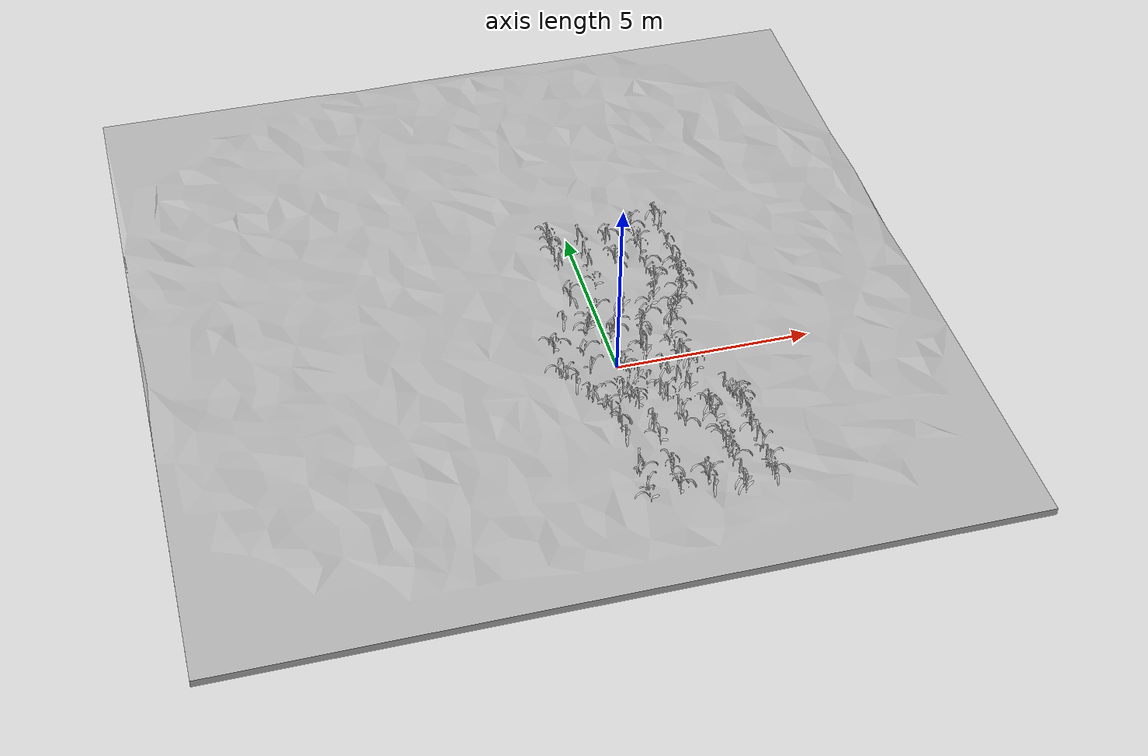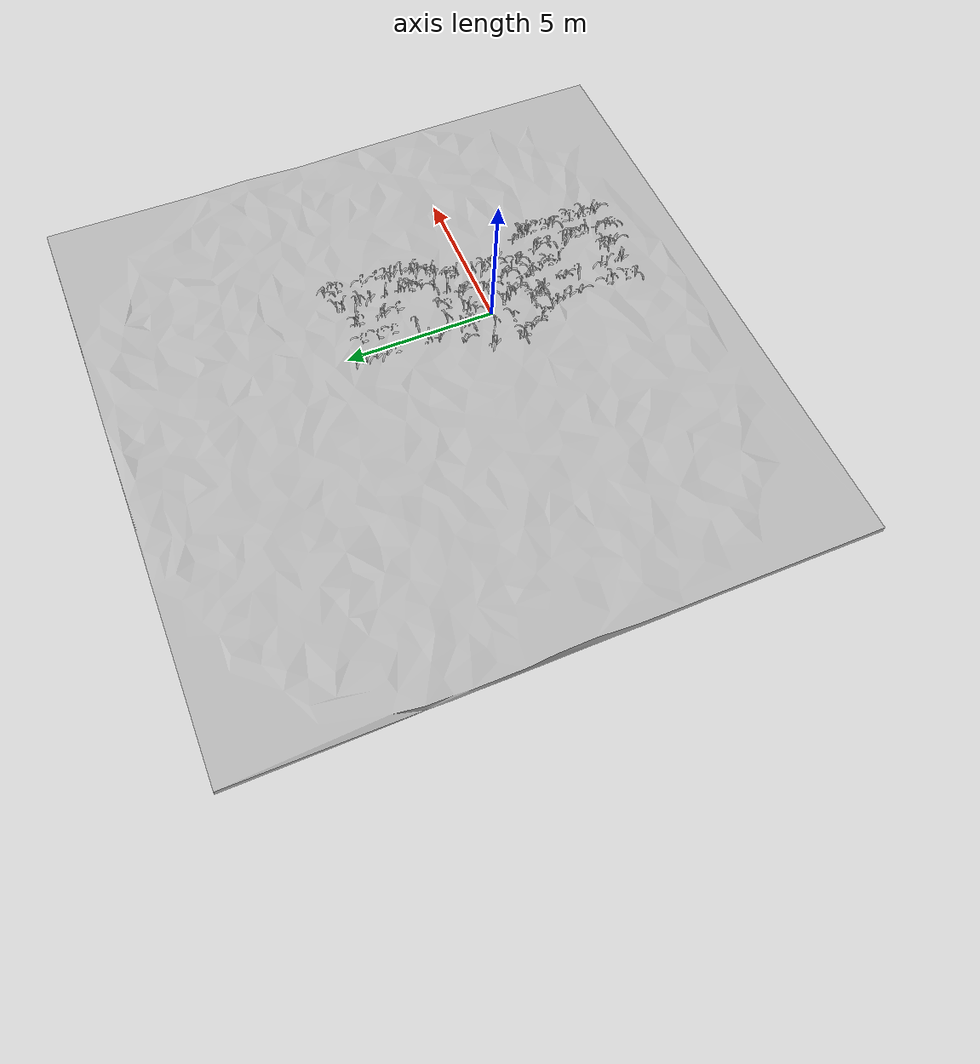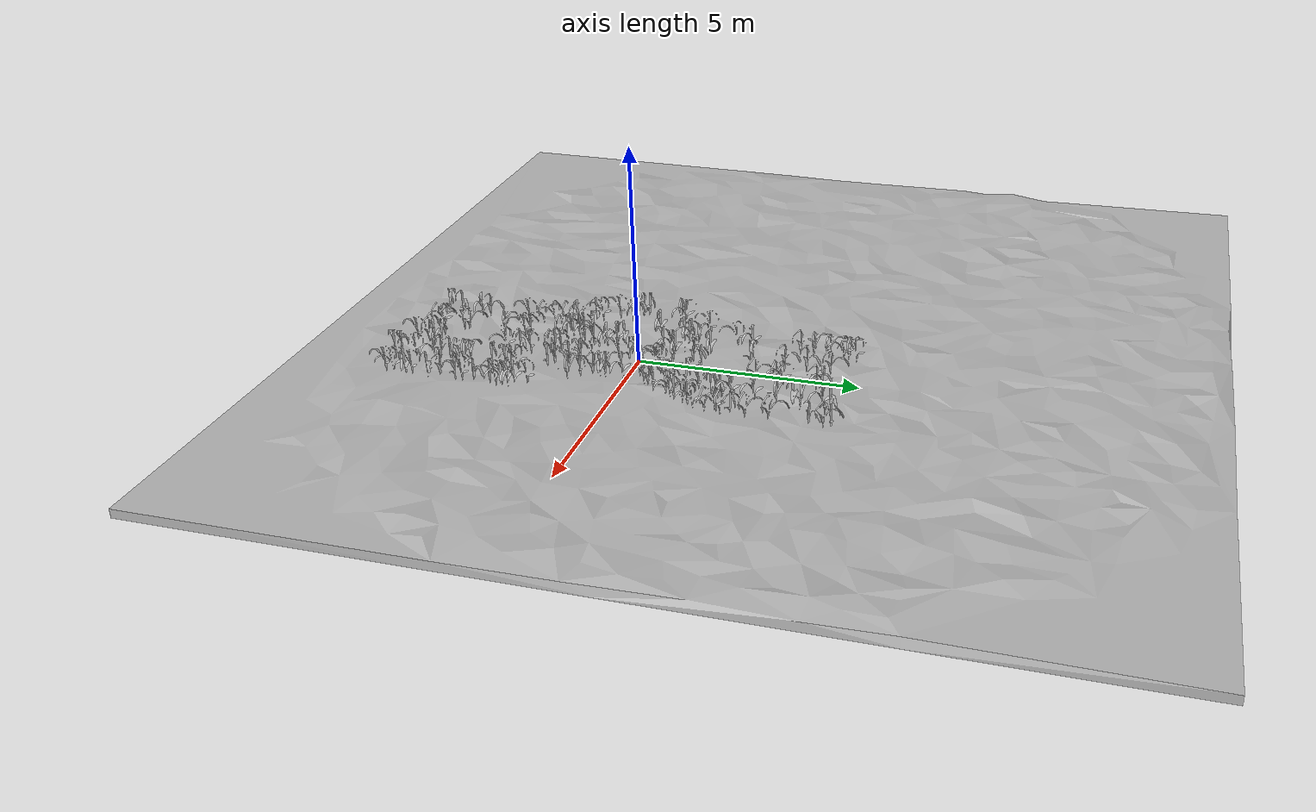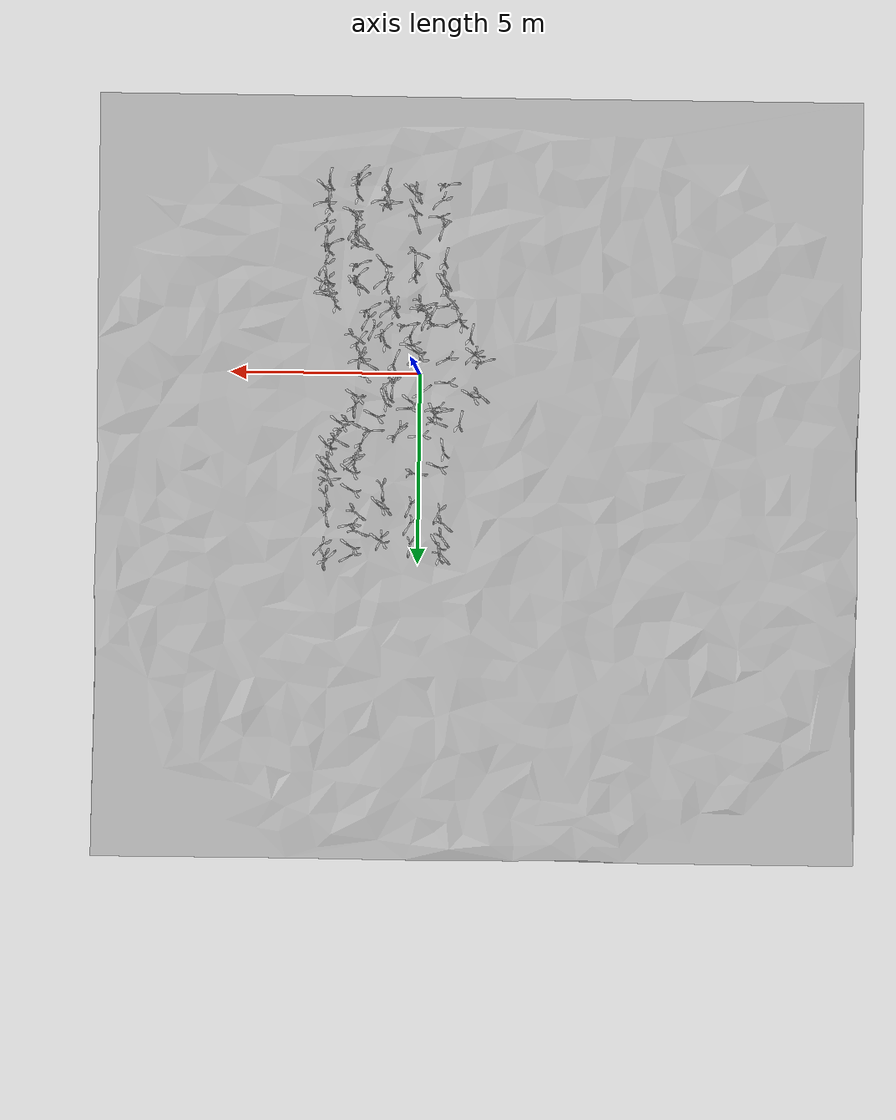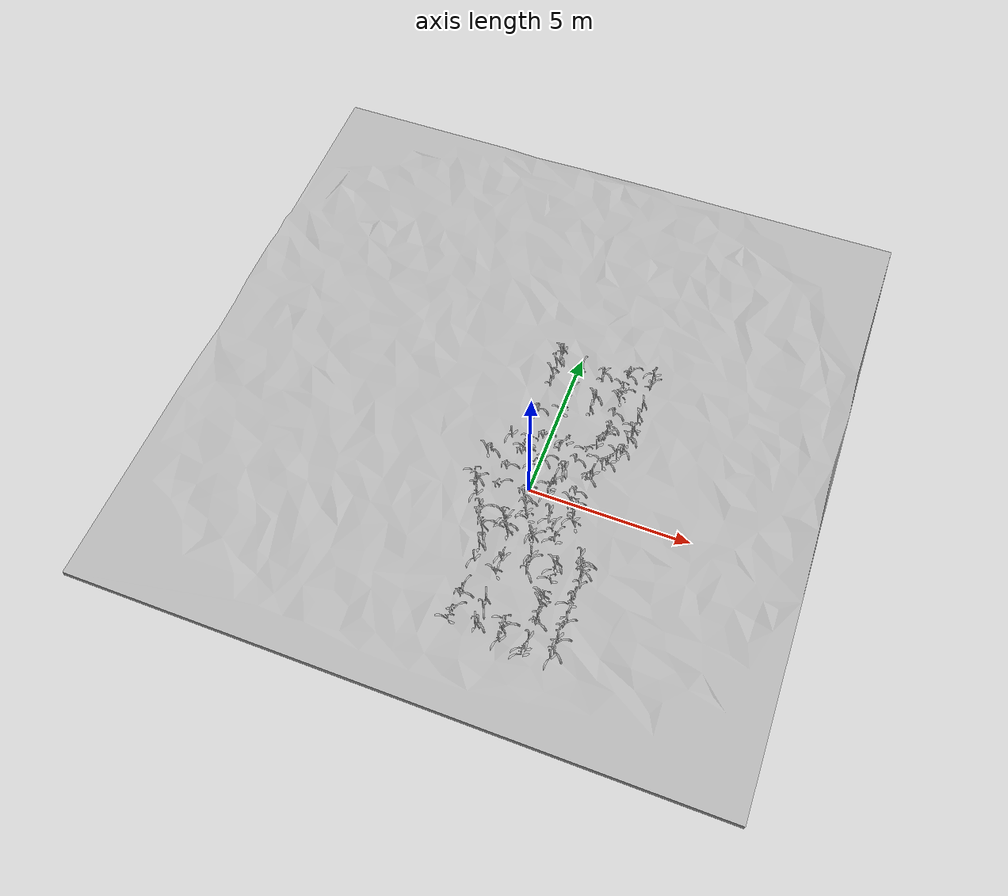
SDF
<sdf version="1.6">
 <world name="default">
  <model name="custom_terrain">
   <static>1</static>
   <link name="link">
    <collision name="collision">
     <geometry><mesh><uri>model://custom_terrain/meshes/terrain.stl</uri></mesh></geometry>
    </collision>
    <visual name="visual">
     <geometry><mesh><uri>model://custom_terrain/meshes/terrain.stl</uri></mesh></geometry>
     <material>
      <script>
       <uri>model://custom_terrain/materials/scripts</uri>
       <uri>model://custom_terrain/materials/textures</uri>
       <name>custom_terrain/terrain</name>
      </script>
     </material>
    </visual>
   </link>
   <pose>-1.53507 2.74629 0.25 0 -0 0</pose>
  </model>
  <include>
   <uri>model://maize_01</uri>
   <pose>-0.6057971747260142 -4.840331856386863 0.30240040864671164 0.0 0.0 4.080810139243971</pose>
   <name>maize_01_0001</name>
   <static>true</static>
  </include>
  <include>
   <uri>model://maize_01</uri>
   <pose>-0.6086300598605491 -4.515987205817887 0.3020995471156185 0.0 0.0 1.5343669590416036</pose>
   <name>maize_01_0002</name>
   <static>true</static>
  </include>
  <include>
   <uri>model://maize_01</uri>
   <pose>-0.5981392175112676 -4.009191502146767 0.3020995471156185 0.0 0.0 0.7514726798483432</pose>
   <name>maize_01_0005</name>
   <static>true</static>
  </include>
  <include>
   <uri>model://maize_01</uri>
   <pose>-0.5987380115854459 -3.8161310306660305 0.3020995471156185 0.0 0.0 2.072586229146665</pose>
   <name>maize_01_0006</name>
   <static>true</static>
  </include>
  <include>
   <uri>model://maize_01</uri>
   <pose>-0.6194873004825006 -2.8545987348182638 0.30161772204223936 0.0 0.0 5.2717201190332235</pose>
   <name>maize_01_0009</name>
   <static>true</static>
  </include>
  <include>
   <uri>model://maize_01</uri>
   <pose>-0.6072231349146906 -2.4843131248003516 0.30161772204223936 0.0 0.0 2.8483951676623778</pose>
   <name>maize_01_0011</name>
   <static>true</static>
  </include>
  <include>
   <uri>model://maize_01</uri>
   <pose>-0.6162073052178489 -2.216392161235414 0.30161772204223936 0.0 0.0 6.0428729564654216</pose>
   <name>maize_01_0012</name>
   <static>true</static>
  </include>
  <include>
   <uri>model://maize_01</uri>
   <pose>-0.7099924426240543 -1.971189359744755 0.30161772204223936 0.0 0.0 3.076309136475502</pose>
   <name>maize_01_0014</name>
   <static>true</static>
  </include>
  <include>
   <uri>model://maize_01</uri>
   <pose>-0.8006024221863707 -1.738467804416863 0.30161772204223936 0.0 0.0 0.9699580045863804</pose>
   <name>maize_01_0016</name>
   <static>true</static>
  </include>
  <include>
   <uri>model://maize_01</uri>
   <pose>-1.0165794570905722 -1.365871627299305 0.30080704026321653 0.0 0.0 1.2696813554173938</pose>
   <name>maize_01_0017</name>
   <static>true</static>
  </include>
  <include>
   <uri>model://maize_01</uri>
   <pose>-1.0957259545492224 -1.2357920415965193 0.30080704026321653 0.0 0.0 5.845494374254266</pose>
   <name>maize_01_0018</name>
   <static>true</static>
  </include>
  <include>
   <uri>model://maize_01</uri>
   <pose>-1.3075351078275577 -0.8903161734995508 0.3008156377957919 0.0 0.0 5.267592659011909</pose>
   <name>maize_01_0019</name>
   <static>true</static>
  </include>
  <include>
   <uri>model://maize_01</uri>
   <pose>-1.4773676788604992 -0.5280220019947446 0.3008156377957919 0.0 0.0 1.6170125893369656</pose>
   <name>maize_01_0021</name>
   <static>true</static>
  </include>
  <include>
   <uri>model://maize_01</uri>
   <pose>-1.5284730858528124 -0.41056442070954335 0.3008156377957919 0.0 0.0 0.17546050673542332</pose>
   <name>maize_01_0022</name>
   <static>true</static>
  </include>
  <include>
   <uri>model://maize_01</uri>
   <pose>-1.5708691523885154 -0.26637117136782407 0.3008156377957919 0.0 0.0 4.200699475206122</pose>
   <name>maize_01_0023</name>
   <static>true</static>
  </include>
  <include>
   <uri>model://maize_01</uri>
   <pose>-1.5054055136201203 0.5176673968275909 0.29972899555270105 0.0 0.0 3.263539429761389</pose>
   <name>maize_01_0025</name>
   <static>true</static>
  </include>
  <include>
   <uri>model://maize_01</uri>
   <pose>-1.4447553304429033 0.6466723906087488 0.29972899555270105 0.0 0.0 0.2272541715201959</pose>
   <name>maize_01_0026</name>
   <static>true</static>
  </include>
  <include>
   <uri>model://maize_01</uri>
   <pose>-1.0513602133965596 1.3630595928067228 0.3002011559271415 0.0 0.0 5.289924449041352</pose>
   <name>maize_01_0028</name>
   <static>true</static>
  </include>
  <include>
   <uri>model://maize_01</uri>
   <pose>-0.6700530897421927 2.1006815653955075 0.29956882762136444 0.0 0.0 5.693852334544095</pose>
   <name>maize_01_0030</name>
   <static>true</static>
  </include>
  <include>
   <uri>model://maize_01</uri>
   <pose>-0.5999240652637323 2.4767907163094 0.29924091509259876 0.0 0.0 0.4027417037686715</pose>
   <name>maize_01_0031</name>
   <static>true</static>
  </include>
  <include>
   <uri>model://maize_01</uri>
   <pose>-0.5883799332610309 3.5553531370445666 0.2996202282633539 0.0 0.0 1.9351619357787655</pose>
   <name>maize_01_0034</name>
   <static>true</static>
  </include>
  <include>
   <uri>model://maize_01</uri>
   <pose>-0.6046053718437263 3.859022551775276 0.2996202282633539 0.0 0.0 3.2339554254747145</pose>
   <name>maize_01_0036</name>
   <static>true</static>
  </include>
  <include>
   <uri>model://maize_01</uri>
   <pose>-0.6041874766625814 4.203398775603976 0.2996202282633539 0.0 0.0 2.97890796688502</pose>
   <name>maize_01_0038</name>
   <static>true</static>
  </include>
  <include>
   <uri>model://maize_01</uri>
   <pose>-0.5881341577646577 4.533070486511248 0.2996202282633539 0.0 0.0 6.0900432516098935</pose>
   <name>maize_01_0039</name>
   <static>true</static>
  </include>
  <include>
   <uri>model://maize_01</uri>
   <pose>-0.588111755856873 4.660810721730009 0.2996202282633539 0.0 0.0 3.0905686591603816</pose>
   <name>maize_01_0040</name>
   <static>true</static>
  </include>
  <include>
   <uri>model://maize_01</uri>
   <pose>-0.5861504126302647 4.810566644917536 0.2996202282633539 0.0 0.0 5.578627528182684</pose>
   <name>maize_01_0041</name>
   <static>true</static>
  </include>
  <include>
   <uri>model://maize_01</uri>
   <pose>0.15265054955968552 -4.756862532043394 0.30150914782617716 0.0 0.0 2.754466377939741</pose>
   <name>maize_01_0044</name>
   <static>true</static>
  </include>
  <include>
   <uri>model://maize_01</uri>
   <pose>0.15999196131130414 -4.604320348132844 0.30150914782617716 0.0 0.0 0.06124716864158616</pose>
   <name>maize_01_0045</name>
   <static>true</static>
  </include>
  <include>
   <uri>model://maize_01</uri>
   <pose>0.1375215697608734 -4.1286792980494 0.30150914782617716 0.0 0.0 5.939586926292098</pose>
   <name>maize_01_0048</name>
   <static>true</static>
  </include>
  <include>
   <uri>model://maize_01</uri>
   <pose>0.16508426984951566 -3.9775850324235416 0.30150914782617716 0.0 0.0 2.725269184794001</pose>
   <name>maize_01_0049</name>
   <static>true</static>
  </include>
  <include>
   <uri>model://maize_01</uri>
   <pose>0.15656870784150304 -3.1167317541103965 0.30198883190199516 0.0 0.0 3.544181968675213</pose>
   <name>maize_01_0052</name>
   <static>true</static>
  </include>
  <include>
   <uri>model://maize_01</uri>
   <pose>0.1299514239185149 -2.633944370925263 0.30198883190199516 0.0 0.0 5.5452779681007645</pose>
   <name>maize_01_0055</name>
   <static>true</static>
  </include>
  <include>
   <uri>model://maize_01</uri>
   <pose>0.1420880416637931 -2.4777846528351155 0.30198883190199516 0.0 0.0 5.039379643108768</pose>
   <name>maize_01_0056</name>
   <static>true</static>
  </include>
  <include>
   <uri>model://maize_01</uri>
   <pose>0.008973289381180492 -1.833758784782683 0.3010684564988788 0.0 0.0 2.921954832778432</pose>
   <name>maize_01_0058</name>
   <static>true</static>
  </include>
  <include>
   <uri>model://maize_01</uri>
   <pose>-0.05239291896987484 -1.7061260249711567 0.3010684564988788 0.0 0.0 4.1339136189530485</pose>
   <name>maize_01_0059</name>
   <static>true</static>
  </include>
  <include>
   <uri>model://maize_01</uri>
   <pose>-0.14389746226511033 -1.5878832168207262 0.3010684564988788 0.0 0.0 0.6099372305266331</pose>
   <name>maize_01_0060</name>
   <static>true</static>
  </include>
  <include>
   <uri>model://maize_01</uri>
   <pose>-0.1901920423380503 -1.462307815237066 0.3010684564988788 0.0 0.0 1.996278936172004</pose>
   <name>maize_01_0061</name>
   <static>true</static>
  </include>
  <include>
   <uri>model://maize_01</uri>
   <pose>-0.25625025021642567 -1.3616799194114801 0.3010684564988788 0.0 0.0 5.035901032457239</pose>
   <name>maize_01_0062</name>
   <static>true</static>
  </include>
  <include>
   <uri>model://maize_01</uri>
   <pose>-0.34892516887984737 -1.2298653933769537 0.3010684564988788 0.0 0.0 3.8533968782470063</pose>
   <name>maize_01_0063</name>
   <static>true</static>
  </include>
  <include>
   <uri>model://maize_01</uri>
   <pose>-0.8009604700347863 -0.3879614148418209 0.3010684564988788 0.0 0.0 1.2514768477992477</pose>
   <name>maize_01_0070</name>
   <static>true</static>
  </include>
  <include>
   <uri>model://maize_01</uri>
   <pose>-0.8082194360698195 0.2592496484986342 0.30038538173642215 0.0 0.0 0.802791321752858</pose>
   <name>maize_01_0073</name>
   <static>true</static>
  </include>
  <include>
   <uri>model://maize_01</uri>
   <pose>-0.560877619860618 0.8980717312168516 0.30117623745503147 0.0 0.0 1.0183061363740042</pose>
   <name>maize_01_0076</name>
   <static>true</static>
  </include>
  <include>
   <uri>model://maize_01</uri>
   <pose>-0.4925708390409673 1.0360936101242582 0.30117623745503147 0.0 0.0 4.150614770228784</pose>
   <name>maize_01_0077</name>
   <static>true</static>
  </include>
  <include>
   <uri>model://maize_01</uri>
   <pose>-0.4354474364203256 1.1456291975946462 0.30117623745503147 0.0 0.0 5.942083682646939</pose>
   <name>maize_01_0078</name>
   <static>true</static>
  </include>
  <include>
   <uri>model://maize_01</uri>
   <pose>-0.36752749030179954 1.2754484227834058 0.30117623745503147 0.0 0.0 3.6256005629664094</pose>
   <name>maize_01_0079</name>
   <static>true</static>
  </include>
  <include>
   <uri>model://maize_01</uri>
   <pose>-0.139245708975497 1.6348458909304864 0.30117623745503147 0.0 0.0 0.89635119758668</pose>
   <name>maize_01_0082</name>
   <static>true</static>
  </include>
  <include>
   <uri>model://maize_01</uri>
   <pose>0.1506951069081817 2.6120664262281292 0.30117623745503147 0.0 0.0 3.8303773030305983</pose>
   <name>maize_01_0090</name>
   <static>true</static>
  </include>
  <include>
   <uri>model://maize_01</uri>
   <pose>0.14861504596303024 3.3839186071808887 0.30117623745503147 0.0 0.0 1.964969680755589</pose>
   <name>maize_01_0095</name>
   <static>true</static>
  </include>
  <include>
   <uri>model://maize_01</uri>
   <pose>0.13983095656654657 3.867839653898884 0.30117623745503147 0.0 0.0 1.7998538913207522</pose>
   <name>maize_01_0098</name>
   <static>true</static>
  </include>
  <include>
   <uri>model://maize_01</uri>
   <pose>0.15663147203787167 4.401061451676362 0.30117623745503147 0.0 0.0 2.196367205210558</pose>
   <name>maize_01_0101</name>
   <static>true</static>
  </include>
  <include>
   <uri>model://maize_01</uri>
   <pose>0.9036197527912113 -4.880444648402789 0.3013172062224282 0.0 0.0 5.226781240359174</pose>
   <name>maize_01_0106</name>
   <static>true</static>
  </include>
  <include>
   <uri>model://maize_01</uri>
   <pose>0.8822009141789471 -4.621579612387087 0.3013172062224282 0.0 0.0 2.562916624864333</pose>
   <name>maize_01_0108</name>
   <static>true</static>
  </include>
  <include>
   <uri>model://maize_01</uri>
   <pose>0.9175128554044127 -4.470929233498228 0.3013172062224282 0.0 0.0 1.0666498702128107</pose>
   <name>maize_01_0109</name>
   <static>true</static>
  </include>
  <include>
   <uri>model://maize_01</uri>
   <pose>0.8914717944369317 -4.3093676639171274 0.3013172062224282 0.0 0.0 4.151438293919274</pose>
   <name>maize_01_0110</name>
   <static>true</static>
  </include>
  <include>
   <uri>model://maize_01</uri>
   <pose>0.8956635557332675 -2.7323929626966352 0.3017165528436525 0.0 0.0 6.200618654366438</pose>
   <name>maize_01_0114</name>
   <static>true</static>
  </include>
  <include>
   <uri>model://maize_01</uri>
   <pose>0.8882187671329842 -2.417298979255603 0.3017165528436525 0.0 0.0 1.4866861786288368</pose>
   <name>maize_01_0116</name>
   <static>true</static>
  </include>
  <include>
   <uri>model://maize_01</uri>
   <pose>0.8713574997704046 -2.1804359230569474 0.3017165528436525 0.0 0.0 5.211173381707841</pose>
   <name>maize_01_0117</name>
   <static>true</static>
  </include>
  <include>
   <uri>model://maize_01</uri>
   <pose>0.7555507334500879 -1.763943401744246 0.3010444349931313 0.0 0.0 2.86805668813168</pose>
   <name>maize_01_0118</name>
   <static>true</static>
  </include>
  <include>
   <uri>model://maize_01</uri>
   <pose>0.7078041397067751 -1.6678759279275475 0.3010444349931313 0.0 0.0 1.4205632887635709</pose>
   <name>maize_01_0119</name>
   <static>true</static>
  </include>
  <include>
   <uri>model://maize_01</uri>
   <pose>0.6176275927358137 -1.5597962894095072 0.3010444349931313 0.0 0.0 5.3766014173927275</pose>
   <name>maize_01_0120</name>
   <static>true</static>
  </include>
  <include>
   <uri>model://maize_01</uri>
   <pose>0.4087424662895096 -1.1877109033732476 0.3007912563091599 0.0 0.0 4.128419764481306</pose>
   <name>maize_01_0122</name>
   <static>true</static>
  </include>
  <include>
   <uri>model://maize_01</uri>
   <pose>0.24695310220901837 -0.9320007779042025 0.3004636476426991 0.0 0.0 5.015072295407084</pose>
   <name>maize_01_0123</name>
   <static>true</static>
  </include>
  <include>
   <uri>model://maize_01</uri>
   <pose>0.11566627987141301 -0.6853019687609689 0.3004636476426991 0.0 0.0 0.6794551751190565</pose>
   <name>maize_01_0125</name>
   <static>true</static>
  </include>
  <include>
   <uri>model://maize_01</uri>
   <pose>0.005569896417102503 -0.4766513303710711 0.3004636476426991 0.0 0.0 0.24830677454127129</pose>
   <name>maize_01_0127</name>
   <static>true</static>
  </include>
  <include>
   <uri>model://maize_01</uri>
   <pose>-0.053083837374164645 -0.3402628354361894 0.3004636476426991 0.0 0.0 1.1646737300006893</pose>
   <name>maize_01_0128</name>
   <static>true</static>
  </include>
  <include>
   <uri>model://maize_01</uri>
   <pose>-0.013946532160090654 0.5931608161022679 0.30117929938587573 0.0 0.0 4.65673410951477</pose>
   <name>maize_01_0131</name>
   <static>true</static>
  </include>
  <include>
   <uri>model://maize_01</uri>
   <pose>0.10242439936786443 0.8309939343314208 0.30117929938587573 0.0 0.0 0.14875888261655731</pose>
   <name>maize_01_0133</name>
   <static>true</static>
  </include>
  <include>
   <uri>model://maize_01</uri>
   <pose>0.173558493619594 0.9343562070275742 0.30117929938587573 0.0 0.0 0.8479872619765254</pose>
   <name>maize_01_0134</name>
   <static>true</static>
  </include>
  <include>
   <uri>model://maize_01</uri>
   <pose>0.4487734705669617 1.4177053371308574 0.30117929938587573 0.0 0.0 1.8154071078079348</pose>
   <name>maize_01_0138</name>
   <static>true</static>
  </include>
  <include>
   <uri>model://maize_01</uri>
   <pose>0.6127224162438931 1.6578378040336885 0.3017666686182077 0.0 0.0 4.610623324741213</pose>
   <name>maize_01_0139</name>
   <static>true</static>
  </include>
  <include>
   <uri>model://maize_01</uri>
   <pose>0.9180210863854608 2.926576796568263 0.30067803141860416 0.0 0.0 2.446679746870755</pose>
   <name>maize_01_0146</name>
   <static>true</static>
  </include>
  <include>
   <uri>model://maize_01</uri>
   <pose>0.9049147041609695 3.3783760032896812 0.29907754399722775 0.0 0.0 2.967404237610217</pose>
   <name>maize_01_0147</name>
   <static>true</static>
  </include>
  <include>
   <uri>model://maize_01</uri>
   <pose>0.9101495479831445 3.5282581986676953 0.29907754399722775 0.0 0.0 6.275277270287981</pose>
   <name>maize_01_0148</name>
   <static>true</static>
  </include>
  <include>
   <uri>model://maize_01</uri>
   <pose>0.8861370905246859 4.25327499877217 0.2990804295132174 0.0 0.0 1.928460740951296</pose>
   <name>maize_01_0150</name>
   <static>true</static>
  </include>
  <include>
   <uri>model://maize_01</uri>
   <pose>0.8864174018613455 4.411262430918564 0.2990804295132174 0.0 0.0 0.17837861670272506</pose>
   <name>maize_01_0151</name>
   <static>true</static>
  </include>
  <include>
   <uri>model://maize_01</uri>
   <pose>1.6347167333663604 -5.060608938707967 0.3006100615571209 0.0 0.0 4.714842928781392</pose>
   <name>maize_01_0154</name>
   <static>true</static>
  </include>
  <include>
   <uri>model://maize_01</uri>
   <pose>1.6391010259355319 -4.884307651563973 0.3006100615571209 0.0 0.0 4.6255680884955686</pose>
   <name>maize_01_0155</name>
   <static>true</static>
  </include>
  <include>
   <uri>model://maize_01</uri>
   <pose>1.6453359797993803 -4.541299884580949 0.3006100615571209 0.0 0.0 5.617383102462399</pose>
   <name>maize_01_0157</name>
   <static>true</static>
  </include>
  <include>
   <uri>model://maize_01</uri>
   <pose>1.6670251805425151 -4.084793344565321 0.3006100615571209 0.0 0.0 0.3755972500363837</pose>
   <name>maize_01_0160</name>
   <static>true</static>
  </include>
  <include>
   <uri>model://maize_01</uri>
   <pose>1.6688671952501768 -3.9459320834313742 0.3006100615571209 0.0 0.0 2.3210666539756963</pose>
   <name>maize_01_0161</name>
   <static>true</static>
  </include>
  <include>
   <uri>model://maize_01</uri>
   <pose>1.642183060301469 -3.735816143829653 0.3006100615571209 0.0 0.0 1.7192073523509022</pose>
   <name>maize_01_0162</name>
   <static>true</static>
  </include>
  <include>
   <uri>model://maize_01</uri>
   <pose>1.6376056476655279 -3.5812191096880244 0.3006100615571209 0.0 0.0 3.137248659487945</pose>
   <name>maize_01_0163</name>
   <static>true</static>
  </include>
  <include>
   <uri>model://maize_01</uri>
   <pose>1.6308141410226586 -3.3940060101483547 0.3006100615571209 0.0 0.0 3.339082647277017</pose>
   <name>maize_01_0164</name>
   <static>true</static>
  </include>
  <include>
   <uri>model://maize_01</uri>
   <pose>1.648854102786437 -3.259337539386034 0.3006100615571209 0.0 0.0 3.71375785189124</pose>
   <name>maize_01_0165</name>
   <static>true</static>
  </include>
  <include>
   <uri>model://maize_01</uri>
   <pose>1.6549411110788406 -2.746431741624727 0.3006100615571209 0.0 0.0 4.259043155859285</pose>
   <name>maize_01_0168</name>
   <static>true</static>
  </include>
  <include>
   <uri>model://maize_01</uri>
   <pose>1.6628591782318158 -2.4262756620321837 0.3006100615571209 0.0 0.0 4.631342703218869</pose>
   <name>maize_01_0170</name>
   <static>true</static>
  </include>
  <include>
   <uri>model://maize_01</uri>
   <pose>1.64604456372076 -2.3203831814832645 0.3006100615571209 0.0 0.0 3.2113408899932128</pose>
   <name>maize_01_0171</name>
   <static>true</static>
  </include>
  <include>
   <uri>model://maize_01</uri>
   <pose>1.6152434217355298 -2.167961427910097 0.3006100615571209 0.0 0.0 6.182869463654158</pose>
   <name>maize_01_0172</name>
   <static>true</static>
  </include>
  <include>
   <uri>model://maize_01</uri>
   <pose>1.3754097141996418 -1.5731182035594597 0.3004929720045676 0.0 0.0 4.458217137492704</pose>
   <name>maize_01_0177</name>
   <static>true</static>
  </include>
  <include>
   <uri>model://maize_01</uri>
   <pose>1.3060409460844806 -1.4408867875101221 0.3004929720045676 0.0 0.0 1.8749139865755904</pose>
   <name>maize_01_0178</name>
   <static>true</static>
  </include>
  <include>
   <uri>model://maize_01</uri>
   <pose>1.1464169771496315 -1.1855095304903516 0.3004929720045676 0.0 0.0 1.913365673220703</pose>
   <name>maize_01_0180</name>
   <static>true</static>
  </include>
  <include>
   <uri>model://maize_01</uri>
   <pose>0.9922526843529151 -0.9646912388647653 0.3004929720045676 0.0 0.0 4.745832766425289</pose>
   <name>maize_01_0182</name>
   <static>true</static>
  </include>
  <include>
   <uri>model://maize_01</uri>
   <pose>0.8888640221437349 -0.7112989995558345 0.3004929720045676 0.0 0.0 5.765496838743114</pose>
   <name>maize_01_0184</name>
   <static>true</static>
  </include>
  <include>
   <uri>model://maize_01</uri>
   <pose>0.6716860351561269 -0.2037629111742267 0.3004929720045676 0.0 0.0 5.087826815758769</pose>
   <name>maize_01_0188</name>
   <static>true</static>
  </include>
  <include>
   <uri>model://maize_01</uri>
   <pose>0.6575685702278109 0.04026405472322583 0.3004929720045676 0.0 0.0 4.030686848229225</pose>
   <name>maize_01_0190</name>
   <static>true</static>
  </include>
  <include>
   <uri>model://maize_01</uri>
   <pose>0.6637455966981258 0.18384216766762165 0.3004929720045676 0.0 0.0 1.503792897644257</pose>
   <name>maize_01_0191</name>
   <static>true</static>
  </include>
  <include>
   <uri>model://maize_01</uri>
   <pose>0.6765818259995864 0.2804646407927269 0.3004929720045676 0.0 0.0 2.2927598525051773</pose>
   <name>maize_01_0192</name>
   <static>true</static>
  </include>
  <include>
   <uri>model://maize_01</uri>
   <pose>0.7937720434214166 0.692915109708941 0.3004929720045676 0.0 0.0 5.800823809413745</pose>
   <name>maize_01_0195</name>
   <static>true</static>
  </include>
  <include>
   <uri>model://maize_01</uri>
   <pose>0.8457478661561992 0.816914770047575 0.3004929720045676 0.0 0.0 5.860910983942801</pose>
   <name>maize_01_0196</name>
   <static>true</static>
  </include>
  <include>
   <uri>model://maize_01</uri>
   <pose>1.0502260120602112 1.1728049430225111 0.3004929720045676 0.0 0.0 0.33271671983941326</pose>
   <name>maize_01_0199</name>
   <static>true</static>
  </include>
  <include>
   <uri>model://maize_01</uri>
   <pose>1.2933641813584507 1.5314541101598202 0.3004929720045676 0.0 0.0 3.9740698229799514</pose>
   <name>maize_01_0202</name>
   <static>true</static>
  </include>
  <include>
   <uri>model://maize_01</uri>
   <pose>1.4948906982301324 1.8753156248159109 0.3004929720045676 0.0 0.0 4.901829948027268</pose>
   <name>maize_01_0205</name>
   <static>true</static>
  </include>
  <include>
   <uri>model://maize_01</uri>
   <pose>1.5734118841342137 2.158191097136417 0.3004929720045676 0.0 0.0 1.269719635208657</pose>
   <name>maize_01_0207</name>
   <static>true</static>
  </include>
  <include>
   <uri>model://maize_01</uri>
   <pose>1.6304192566867035 2.2633119870103378 0.3004929720045676 0.0 0.0 1.5412131281899575</pose>
   <name>maize_01_0208</name>
   <static>true</static>
  </include>
  <include>
   <uri>model://maize_01</uri>
   <pose>1.6565533929071978 2.4107821451545566 0.3004929720045676 0.0 0.0 5.198855542671266</pose>
   <name>maize_01_0209</name>
   <static>true</static>
  </include>
  <include>
   <uri>model://maize_01</uri>
   <pose>1.6648213665685356 2.6301717200474513 0.3004929720045676 0.0 0.0 0.19974243450547885</pose>
   <name>maize_01_0211</name>
   <static>true</static>
  </include>
  <include>
   <uri>model://maize_01</uri>
   <pose>1.6310757618125764 3.11204402810893 0.3004929720045676 0.0 0.0 0.28104635499355657</pose>
   <name>maize_01_0214</name>
   <static>true</static>
  </include>
  <include>
   <uri>model://maize_01</uri>
   <pose>1.6640443407433334 3.5932994113417753 0.3004929720045676 0.0 0.0 3.2699439494026903</pose>
   <name>maize_01_0217</name>
   <static>true</static>
  </include>
  <include>
   <uri>model://maize_01</uri>
   <pose>1.6467210740121347 3.9454837181259923 0.3004929720045676 0.0 0.0 1.000099958930992</pose>
   <name>maize_01_0219</name>
   <static>true</static>
  </include>
  <include>
   <uri>model://maize_01</uri>
   <pose>1.63389473248673 4.103573179448187 0.3004929720045676 0.0 0.0 3.5459922193975557</pose>
   <name>maize_01_0220</name>
   <static>true</static>
  </include>
  <include>
   <uri>model://maize_01</uri>
   <pose>1.6368423748705287 4.57487796978341 0.3004929720045676 0.0 0.0 0.1815958676816037</pose>
   <name>maize_01_0223</name>
   <static>true</static>
  </include>
  <include>
   <uri>model://maize_01</uri>
   <pose>1.6492677223895844 4.73223831527109 0.3004929720045676 0.0 0.0 1.2858325282668284</pose>
   <name>maize_01_0224</name>
   <static>true</static>
  </include>
  <include>
   <uri>model://maize_01</uri>
   <pose>2.3913365195250673 -4.8812381935702405 0.30051200114496157 0.0 0.0 5.327426007769043</pose>
   <name>maize_01_0227</name>
   <static>true</static>
  </include>
  <include>
   <uri>model://maize_01</uri>
   <pose>2.4171933906904592 -4.685727048550593 0.30051200114496157 0.0 0.0 0.04820500382573548</pose>
   <name>maize_01_0228</name>
   <static>true</static>
  </include>
  <include>
   <uri>model://maize_01</uri>
   <pose>2.4157227706419113 -4.411918385607859 0.30051200114496157 0.0 0.0 1.1304044517993441</pose>
   <name>maize_01_0230</name>
   <static>true</static>
  </include>
  <include>
   <uri>model://maize_01</uri>
   <pose>2.3922911383107532 -4.265719974591158 0.30051200114496157 0.0 0.0 5.411858282752298</pose>
   <name>maize_01_0231</name>
   <static>true</static>
  </include>
  <include>
   <uri>model://maize_01</uri>
   <pose>2.408839630481577 -3.899247118640356 0.30051200114496157 0.0 0.0 1.3919591694520255</pose>
   <name>maize_01_0233</name>
   <static>true</static>
  </include>
  <include>
   <uri>model://maize_01</uri>
   <pose>2.3948344584540595 -3.606189531641661 0.30051200114496157 0.0 0.0 2.1341209513038737</pose>
   <name>maize_01_0235</name>
   <static>true</static>
  </include>
  <include>
   <uri>model://maize_01</uri>
   <pose>2.3872654675996765 -3.2609964119264228 0.30051200114496157 0.0 0.0 4.341172093776123</pose>
   <name>maize_01_0237</name>
   <static>true</static>
  </include>
  <include>
   <uri>model://maize_01</uri>
   <pose>2.384556663200968 -3.106903306296174 0.30051200114496157 0.0 0.0 5.666680905808902</pose>
   <name>maize_01_0238</name>
   <static>true</static>
  </include>
  <include>
   <uri>model://maize_01</uri>
   <pose>2.405764578095571 -2.8284370521361604 0.30051200114496157 0.0 0.0 1.7737161531214225</pose>
   <name>maize_01_0240</name>
   <static>true</static>
  </include>
  <include>
   <uri>model://maize_01</uri>
   <pose>2.402300273496095 -2.4586856586823793 0.30051200114496157 0.0 0.0 1.8525536390624395</pose>
   <name>maize_01_0242</name>
   <static>true</static>
  </include>
  <include>
   <uri>model://maize_01</uri>
   <pose>2.4025714824451554 -2.3257300374713723 0.30051200114496157 0.0 0.0 5.726157147475482</pose>
   <name>maize_01_0243</name>
   <static>true</static>
  </include>
  <include>
   <uri>model://maize_01</uri>
   <pose>2.3826831798282964 -2.2129035354340747 0.30051200114496157 0.0 0.0 0.255330599798521</pose>
   <name>maize_01_0244</name>
   <static>true</static>
  </include>
  <include>
   <uri>model://maize_01</uri>
   <pose>2.3528077029024494 -2.0771374490067314 0.30051200114496157 0.0 0.0 0.8962457046950182</pose>
   <name>maize_01_0245</name>
   <static>true</static>
  </include>
  <include>
   <uri>model://maize_01</uri>
   <pose>2.3010687010371615 -1.9406960866271359 0.30051200114496157 0.0 0.0 0.6084597619356586</pose>
   <name>maize_01_0246</name>
   <static>true</static>
  </include>
  <include>
   <uri>model://maize_01</uri>
   <pose>2.187413724655976 -1.70450819128561 0.30051200114496157 0.0 0.0 5.666483221958403</pose>
   <name>maize_01_0248</name>
   <static>true</static>
  </include>
  <include>
   <uri>model://maize_01</uri>
   <pose>1.7592728846414813 -0.956404841404076 0.30051200114496157 0.0 0.0 3.30475898518916</pose>
   <name>maize_01_0254</name>
   <static>true</static>
  </include>
  <include>
   <uri>model://maize_01</uri>
   <pose>1.6153104145752237 -0.7220296898669438 0.30051200114496157 0.0 0.0 4.8486252297574355</pose>
   <name>maize_01_0256</name>
   <static>true</static>
  </include>
  <include>
   <uri>model://maize_01</uri>
   <pose>1.5173294898552439 -0.4798548003511154 0.30051200114496157 0.0 0.0 2.223214568641168</pose>
   <name>maize_01_0258</name>
   <static>true</static>
  </include>
  <include>
   <uri>model://maize_01</uri>
   <pose>1.4573870327703886 -0.3476466464226886 0.30051200114496157 0.0 0.0 1.09554017206479</pose>
   <name>maize_01_0259</name>
   <static>true</static>
  </include>
  <include>
   <uri>model://maize_01</uri>
   <pose>1.4190477910468215 -0.23462735407856414 0.30051200114496157 0.0 0.0 3.4349262122123876</pose>
   <name>maize_01_0260</name>
   <static>true</static>
  </include>
  <include>
   <uri>model://maize_01</uri>
   <pose>1.391037611815667 0.14196191119524862 0.30051200114496157 0.0 0.0 0.48792993936010803</pose>
   <name>maize_01_0263</name>
   <static>true</static>
  </include>
  <include>
   <uri>model://maize_01</uri>
   <pose>1.5452103318619461 0.6757994044608451 0.30051200114496157 0.0 0.0 0.2500163157184418</pose>
   <name>maize_01_0267</name>
   <static>true</static>
  </include>
  <include>
   <uri>model://maize_01</uri>
   <pose>1.625269074236097 0.7975283544840812 0.30051200114496157 0.0 0.0 2.248273112289537</pose>
   <name>maize_01_0268</name>
   <static>true</static>
  </include>
  <include>
   <uri>model://maize_01</uri>
   <pose>1.6830679328343383 0.9324813679596107 0.30051200114496157 0.0 0.0 4.865280044563127</pose>
   <name>maize_01_0269</name>
   <static>true</static>
  </include>
  <include>
   <uri>model://maize_01</uri>
   <pose>1.8681147259079405 1.274064853170404 0.30051200114496157 0.0 0.0 3.520688301017306</pose>
   <name>maize_01_0272</name>
   <static>true</static>
  </include>
  <include>
   <uri>model://maize_01</uri>
   <pose>1.955234064206153 1.388629252429012 0.30051200114496157 0.0 0.0 0.15031139305450478</pose>
   <name>maize_01_0273</name>
   <static>true</static>
  </include>
  <include>
   <uri>model://maize_01</uri>
   <pose>2.0309425890496944 1.5058618536545805 0.30051200114496157 0.0 0.0 4.474450157647677</pose>
   <name>maize_01_0274</name>
   <static>true</static>
  </include>
  <include>
   <uri>model://maize_01</uri>
   <pose>2.165052019658403 1.7507112036760948 0.30051200114496157 0.0 0.0 3.4356447308044853</pose>
   <name>maize_01_0276</name>
   <static>true</static>
  </include>
  <include>
   <uri>model://maize_01</uri>
   <pose>2.2437637050395534 1.8661488538082145 0.30051200114496157 0.0 0.0 4.864497104890135</pose>
   <name>maize_01_0277</name>
   <static>true</static>
  </include>
  <include>
   <uri>model://maize_01</uri>
   <pose>2.285782614857836 1.9834113919107372 0.30051200114496157 0.0 0.0 6.236984624027383</pose>
   <name>maize_01_0278</name>
   <static>true</static>
  </include>
  <include>
   <uri>model://maize_01</uri>
   <pose>2.355653712840534 2.262535237799321 0.30051200114496157 0.0 0.0 2.945536201331119</pose>
   <name>maize_01_0280</name>
   <static>true</static>
  </include>
  <include>
   <uri>model://maize_01</uri>
   <pose>2.3827329601182194 2.496036294805888 0.30051200114496157 0.0 0.0 6.156747153686759</pose>
   <name>maize_01_0282</name>
   <static>true</static>
  </include>
  <include>
   <uri>model://maize_01</uri>
   <pose>2.389651835753169 2.608994361195107 0.30051200114496157 0.0 0.0 2.823256765069943</pose>
   <name>maize_01_0283</name>
   <static>true</static>
  </include>
  <include>
   <uri>model://maize_01</uri>
   <pose>2.4031988554413064 2.8265062880879053 0.30051200114496157 0.0 0.0 4.052965580452569</pose>
   <name>maize_01_0284</name>
   <static>true</static>
  </include>
  <include>
   <uri>model://maize_01</uri>
   <pose>2.397161876761774 3.133123772320275 0.30051200114496157 0.0 0.0 2.6699494002291946</pose>
   <name>maize_01_0286</name>
   <static>true</static>
  </include>
  <include>
   <uri>model://maize_01</uri>
   <pose>2.3922633314073543 3.629985692111726 0.30051200114496157 0.0 0.0 2.5844700472640723</pose>
   <name>maize_01_0289</name>
   <static>true</static>
  </include>
  <include>
   <uri>model://maize_01</uri>
   <pose>2.405462513145991 4.457531259716827 0.30051200114496157 0.0 0.0 1.6247053016130626</pose>
   <name>maize_01_0294</name>
   <static>true</static>
  </include>
  <include>
   <uri>model://maize_01</uri>
   <pose>2.3814503294917517 4.7574008168199295 0.30051200114496157 0.0 0.0 2.3398665280819784</pose>
   <name>maize_01_0296</name>
   <static>true</static>
  </include>
  <include>
   <uri>model://maize_01</uri>
   <pose>2.392565452354602 4.927896159626398 0.30051200114496157 0.0 0.0 4.6954888846100795</pose>
   <name>maize_01_0297</name>
   <static>false</static>
  </include>
 </world>
</sdf>
